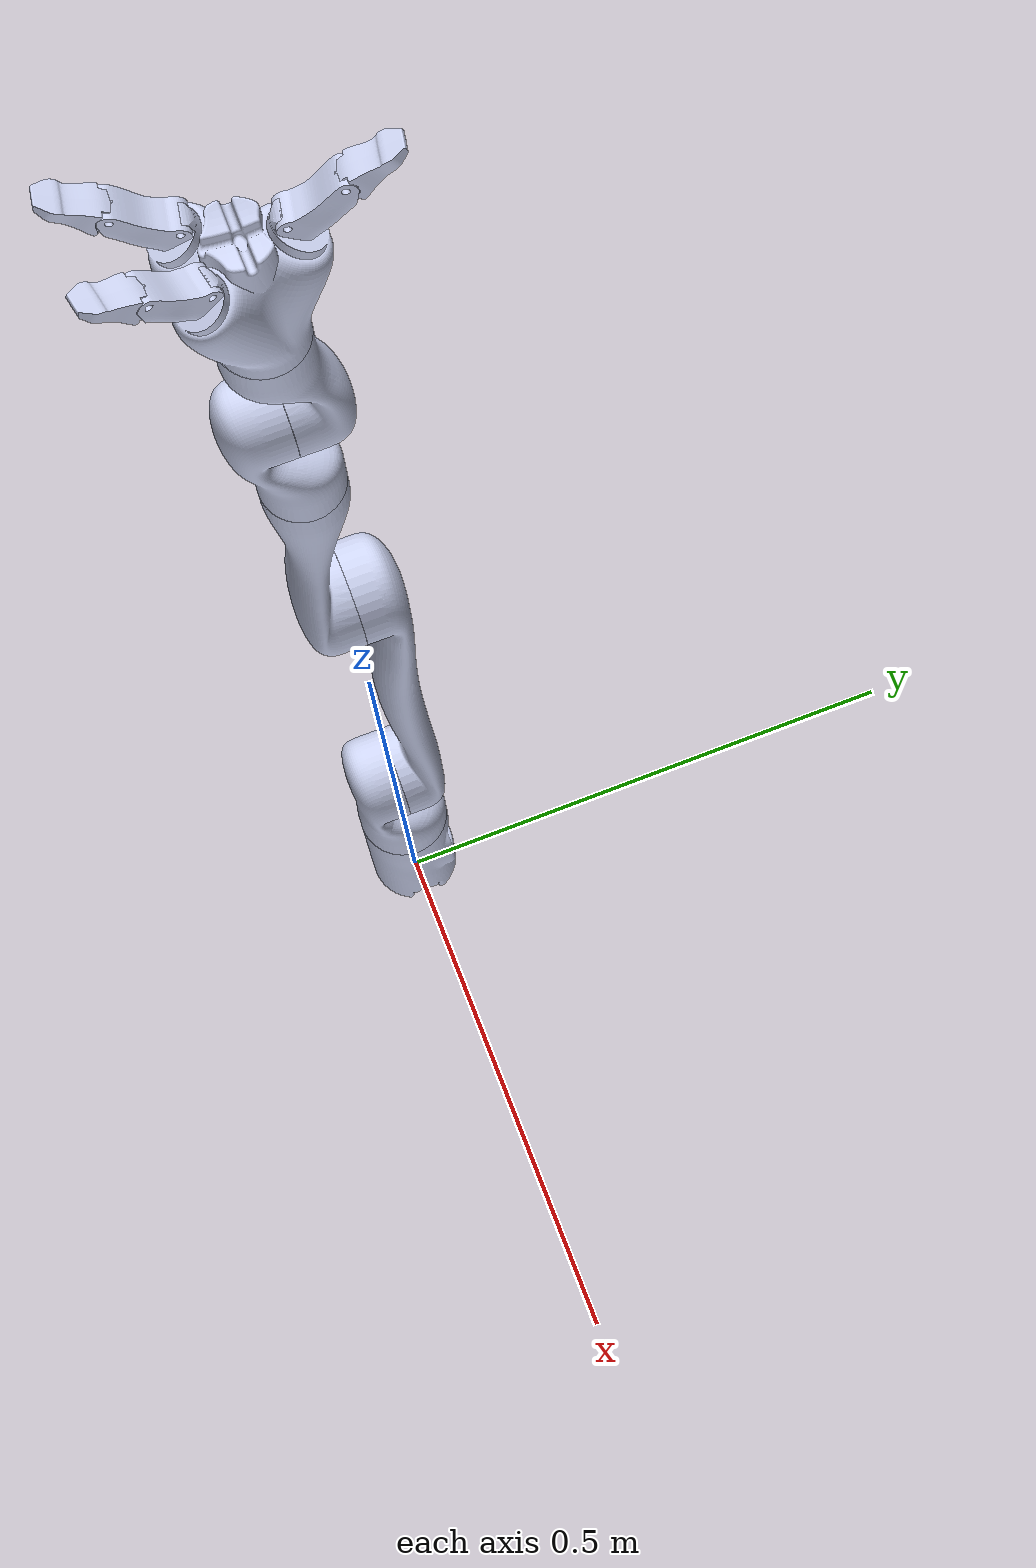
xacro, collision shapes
<?xml version="1.0"?>
<!-- j2s6_3 refers to jaco v2 6DOF spherical 3fingers -->

<robot xmlns:xi="http://www.w3.org/2001/XInclude"
    xmlns:gazebo="http://playerstage.sourceforge.net/gazebo/xmlschema/#gz"
    xmlns:model="http://playerstage.sourceforge.net/gazebo/xmlschema/#model"
    xmlns:sensor="http://playerstage.sourceforge.net/gazebo/xmlschema/#sensor"
    xmlns:body="http://playerstage.sourceforge.net/gazebo/xmlschema/#body"
    xmlns:geom="http://playerstage.sourceforge.net/gazebo/xmlschema/#geom"
    xmlns:joint="http://playerstage.sourceforge.net/gazebo/xmlschema/#joint"
    xmlns:controller="http://playerstage.sourceforge.net/gazebo/xmlschema/#controller"
    xmlns:interface="http://playerstage.sourceforge.net/gazebo/xmlschema/#interface"
    xmlns:rendering="http://playerstage.sourceforge.net/gazebo/xmlschema/#rendering"
    xmlns:renderable="http://playerstage.sourceforge.net/gazebo/xmlschema/#renderable"
    xmlns:physics="http://playerstage.sourceforge.net/gazebo/xmlschema/#physics"
    xmlns:xacro="http://www.ros.org/wiki/xacro" name="j2s6s300">

    <xacro:include filename="$(find kinova_description)/urdf/j2s6s300.xacro"/>

    <xacro:arg name="arm_root" default="base_link" />
    <xacro:property name="arm_root" value="$(arg arm_root)" />
    <link name="${arm_root}"/>
    <xacro:j2s6s300 base_parent="${arm_root}"/>
</robot>

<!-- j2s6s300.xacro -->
<!-- j2_6s refers to jaco v2 6DOF spherical -->

<robot xmlns:xi="http://www.w3.org/2001/XInclude"
    xmlns:gazebo="http://playerstage.sourceforge.net/gazebo/xmlschema/#gz"
    xmlns:model="http://playerstage.sourceforge.net/gazebo/xmlschema/#model"
    xmlns:sensor="http://playerstage.sourceforge.net/gazebo/xmlschema/#sensor"
    xmlns:body="http://playerstage.sourceforge.net/gazebo/xmlschema/#body"
    xmlns:geom="http://playerstage.sourceforge.net/gazebo/xmlschema/#geom"
    xmlns:joint="http://playerstage.sourceforge.net/gazebo/xmlschema/#joint"
    xmlns:controller="http://playerstage.sourceforge.net/gazebo/xmlschema/#controller"
    xmlns:interface="http://playerstage.sourceforge.net/gazebo/xmlschema/#interface"
    xmlns:rendering="http://playerstage.sourceforge.net/gazebo/xmlschema/#rendering"
    xmlns:renderable="http://playerstage.sourceforge.net/gazebo/xmlschema/#renderable"
    xmlns:physics="http://playerstage.sourceforge.net/gazebo/xmlschema/#physics"
    xmlns:xacro="http://www.ros.org/wiki/xacro">

    <xacro:include filename="$(find kinova_description)/urdf/kinova_common.xacro" />
    <xacro:include filename="$(find kinova_description)/urdf/kinova_finger_set.xacro" />

    <!-- Import all Gazebo-customization elements -->
    <xacro:include filename="$(find kinova_description)/urdf/kinova.gazebo" />

    <xacro:property name="link_base_mesh" value="base" />
    <xacro:property name="link_1_mesh" value="shoulder" />
    <xacro:property name="link_2_mesh" value="arm" />
    <xacro:property name="link_3_mesh" value="forearm" />
    <xacro:property name="link_4_mesh" value="wrist_spherical_1" />
    <xacro:property name="link_5_mesh" value="wrist_spherical_2" />
    <xacro:property name="link_6_mesh" value="hand_3finger" />

    <xacro:property name="link_base_mesh_no" value="0" />
    <xacro:property name="link_1_mesh_no" value="1" />
    <xacro:property name="link_2_mesh_no" value="2" />
    <xacro:property name="link_3_mesh_no" value="3" />
    <xacro:property name="link_4_mesh_no" value="8" />
    <xacro:property name="link_5_mesh_no" value="9" />
    <xacro:property name="link_6_mesh_no" value="55" />

    <xacro:property name="joint_base" value="joint_base" />
    <xacro:property name="joint_base_type" value="fixed" />
    <xacro:property name="joint_base_axis_xyz" value="0 0 0" />
    <xacro:property name="joint_base_origin_xyz" value="0 0 0" />
    <xacro:property name="joint_base_origin_rpy" value="0 0 0" />

    <xacro:property name="joint_1" value="joint_1" />
    <xacro:property name="joint_1_type" value="continuous" />
    <xacro:property name="joint_1_axis_xyz" value="0 0 1" />
    <xacro:property name="joint_1_origin_xyz" value="0 0 0.15675" />
    <xacro:property name="joint_1_origin_rpy" value="0 ${J_PI} 0" />
    <xacro:property name="joint_1_lower_limit" value="${-2*J_PI}" />
    <xacro:property name="joint_1_upper_limit" value="${2*J_PI}" />
    <xacro:property name="joint_1_velocity_limit" value="${36*J_PI/180}" />
    <xacro:property name="joint_1_torque_limit" value="1000" />

    <xacro:property name="joint_2" value="joint_2" />
    <xacro:property name="joint_2_type" value="revolute" />
    <xacro:property name="joint_2_axis_xyz" value="0 0 1" />
    <xacro:property name="joint_2_origin_xyz" value="0 0.0016 -0.11875" />
    <xacro:property name="joint_2_origin_rpy" value="${-J_PI/2} 0 ${J_PI}"/>
    <xacro:property name="joint_2_lower_limit" value="${47/180*J_PI}" />
    <xacro:property name="joint_2_upper_limit" value="${313/180*J_PI}" />
    <xacro:property name="joint_2_velocity_limit" value="${36*J_PI/180}" />
    <xacro:property name="joint_2_torque_limit" value="1000" />

    <xacro:property name="joint_3" value="joint_3" />
    <xacro:property name="joint_3_type" value="revolute" />
    <xacro:property name="joint_3_axis_xyz" value="0 0 1" />
    <xacro:property name="joint_3_origin_xyz" value="0 -0.410 0" />
    <xacro:property name="joint_3_origin_rpy" value="0 ${J_PI} 0" />
    <xacro:property name="joint_3_lower_limit" value="${19/180*J_PI}" />
    <xacro:property name="joint_3_upper_limit" value="${341/180*J_PI}" />
    <xacro:property name="joint_3_velocity_limit" value="${36*J_PI/180}" />
    <xacro:property name="joint_3_torque_limit" value="1000" />

    <xacro:property name="joint_4" value="joint_4" />
    <xacro:property name="joint_4_type" value="continuous" />
    <xacro:property name="joint_4_axis_xyz" value="0 0 1" />
    <xacro:property name="joint_4_origin_xyz" value="0 0.2073 -0.0114" />
    <xacro:property name="joint_4_origin_rpy" value="${-J_PI/2} 0 ${J_PI}" />
    <xacro:property name="joint_4_lower_limit" value="${-2*J_PI}" />
    <xacro:property name="joint_4_upper_limit" value="${2*J_PI}" />
    <xacro:property name="joint_4_velocity_limit" value="${48*J_PI/180}" />
    <xacro:property name="joint_4_torque_limit" value="1000" />

    <xacro:property name="joint_5" value="joint_5" />
    <xacro:property name="joint_5_type" value="revolute" />
    <xacro:property name="joint_5_axis_xyz" value="0 0 1" />
    <xacro:property name="joint_5_origin_xyz" value="0 0 -0.10375" />
    <xacro:property name="joint_5_origin_rpy" value="${J_PI/2} 0 ${J_PI}" />
    <xacro:property name="joint_5_lower_limit" value="${30/180*J_PI}" />
    <xacro:property name="joint_5_upper_limit" value="${330/180*J_PI}" />
    <xacro:property name="joint_5_velocity_limit" value="${48*J_PI/180}" />
    <xacro:property name="joint_5_torque_limit" value="1000" />

    <xacro:property name="joint_6" value="joint_6" />
    <xacro:property name="joint_6_type" value="continuous" />
    <xacro:property name="joint_6_axis_xyz" value="0 0 1" />
    <xacro:property name="joint_6_origin_xyz" value="0 0.10375 0" />
    <xacro:property name="joint_6_origin_rpy" value="${-J_PI/2} 0 ${J_PI}" />
    <xacro:property name="joint_6_lower_limit" value="${-2*J_PI}" />
    <xacro:property name="joint_6_upper_limit" value="${2*J_PI}" />
    <xacro:property name="joint_6_velocity_limit" value="${48*J_PI/180}" />
    <xacro:property name="joint_6_torque_limit" value="1000" />

    <xacro:property name="joint_end_effector" value="end_effector_offset" />
    <xacro:property name="joint_end_effector_type" value="fixed" />
    <xacro:property name="joint_end_effector_axis_xyz" value="0 0 0" />
    <xacro:property name="joint_end_effector_origin_xyz" value="0 0 -0.1600" />
    <xacro:property name="joint_end_effector_origin_rpy" value="${J_PI} 0 ${J_PI/2}" />

    <xacro:macro name="j2s6s300" params="base_parent prefix:=j2s6s300">

        <xacro:gazebo_config robot_namespace="${prefix}"/>

        <xacro:kinova_armlink link_name="${prefix}_link_base" link_mesh="${link_base_mesh}" mesh_no="${link_base_mesh_no}"/>
        <xacro:kinova_armjoint joint_name="${prefix}_joint_base" type="${joint_base_type}" parent="${base_parent}" child="${prefix}_link_base" joint_axis_xyz="${joint_base_axis_xyz}" joint_origin_xyz="${joint_base_origin_xyz}" joint_origin_rpy="${joint_base_origin_rpy}" joint_lower_limit="0" joint_upper_limit="0" joint_velocity_limit="0" joint_torque_limit="0" fixed="true"/>

        <xacro:kinova_armlink link_name="${prefix}_link_1" link_mesh="${link_1_mesh}" use_ring_mesh="true" mesh_no="${link_1_mesh_no}"/>
        <xacro:kinova_armjoint joint_name="${prefix}_joint_1" type="${joint_1_type}" parent="${prefix}_link_base" child="${prefix}_link_1" joint_axis_xyz="${joint_1_axis_xyz}" joint_origin_xyz="${joint_1_origin_xyz}" joint_origin_rpy="${joint_1_origin_rpy}" joint_lower_limit="${joint_1_lower_limit}" joint_upper_limit="${joint_1_upper_limit}" joint_velocity_limit="${joint_1_velocity_limit}" joint_torque_limit="${joint_1_torque_limit}"/>

        <xacro:kinova_armlink link_name="${prefix}_link_2" link_mesh="${link_2_mesh}" use_ring_mesh="true" mesh_no="${link_2_mesh_no}"/>
        <xacro:kinova_armjoint joint_name="${prefix}_joint_2" type="${joint_2_type}" parent="${prefix}_link_1" child="${prefix}_link_2" joint_axis_xyz="${joint_2_axis_xyz}" joint_origin_xyz="${joint_2_origin_xyz}" joint_origin_rpy="${joint_2_origin_rpy}" joint_lower_limit="${joint_2_lower_limit}" joint_upper_limit="${joint_2_upper_limit}" joint_velocity_limit="${joint_2_velocity_limit}" joint_torque_limit="${joint_2_torque_limit}"/>

        <xacro:kinova_armlink link_name="${prefix}_link_3" link_mesh="${link_3_mesh}" use_ring_mesh="true" mesh_no="${link_3_mesh_no}"/>
        <xacro:kinova_armjoint joint_name="${prefix}_joint_3" type="${joint_3_type}" parent="${prefix}_link_2" child="${prefix}_link_3" joint_axis_xyz="${joint_3_axis_xyz}" joint_origin_xyz="${joint_3_origin_xyz}" joint_origin_rpy="${joint_3_origin_rpy}" joint_lower_limit="${joint_3_lower_limit}" joint_upper_limit="${joint_3_upper_limit}" joint_velocity_limit="${joint_3_velocity_limit}" joint_torque_limit="${joint_3_torque_limit}"/>

        <xacro:kinova_armlink link_name="${prefix}_link_4" link_mesh="${link_4_mesh}" use_ring_mesh="true" ring_mesh="ring_small" mesh_no="${link_4_mesh_no}"/>
        <xacro:kinova_armjoint joint_name="${prefix}_joint_4" type="${joint_4_type}" parent="${prefix}_link_3" child="${prefix}_link_4" joint_axis_xyz="${joint_4_axis_xyz}" joint_origin_xyz="${joint_4_origin_xyz}" joint_origin_rpy="${joint_4_origin_rpy}" joint_lower_limit="${joint_4_lower_limit}" joint_upper_limit="${joint_4_upper_limit}" joint_velocity_limit="${joint_4_velocity_limit}" joint_torque_limit="${joint_4_torque_limit}"/>

        <xacro:kinova_armlink link_name="${prefix}_link_5" link_mesh="${link_5_mesh}" use_ring_mesh="true" ring_mesh="ring_small" mesh_no="${link_5_mesh_no}"/>
        <xacro:kinova_armjoint joint_name="${prefix}_joint_5" type="${joint_5_type}" parent="${prefix}_link_4" child="${prefix}_link_5" joint_axis_xyz="${joint_5_axis_xyz}" joint_origin_xyz="${joint_5_origin_xyz}" joint_origin_rpy="${joint_5_origin_rpy}" joint_lower_limit="${joint_5_lower_limit}" joint_upper_limit="${joint_5_upper_limit}" joint_velocity_limit="${joint_5_velocity_limit}" joint_torque_limit="${joint_5_torque_limit}"/>

        <xacro:kinova_armlink link_name="${prefix}_link_6" link_mesh="${link_6_mesh}" use_ring_mesh="true" ring_mesh="ring_small" mesh_no="${link_6_mesh_no}"/>
        <xacro:kinova_armjoint joint_name="${prefix}_joint_6" type="${joint_6_type}" parent="${prefix}_link_5" child="${prefix}_link_6" joint_axis_xyz="${joint_6_axis_xyz}" joint_origin_xyz="${joint_6_origin_xyz}" joint_origin_rpy="${joint_6_origin_rpy}" joint_lower_limit="${joint_6_lower_limit}" joint_upper_limit="${joint_6_upper_limit}" joint_velocity_limit="${joint_6_velocity_limit}" joint_torque_limit="${joint_6_torque_limit}"/>

        <xacro:kinova_virtual_link link_name="${prefix}_end_effector"/>
        <xacro:kinova_virtual_joint joint_name="${prefix}_joint_end_effector" type="${joint_end_effector_type}" parent="${prefix}_link_6" child="${prefix}_end_effector" joint_axis_xyz="${joint_end_effector_axis_xyz}" joint_origin_xyz="${joint_end_effector_origin_xyz}" joint_origin_rpy="${joint_end_effector_origin_rpy}" joint_lower_limit="0" joint_upper_limit="0"/>

    <xacro:kinova_3fingers link_hand="${prefix}_link_6" prefix="${prefix}_"/>

    </xacro:macro>

</robot>

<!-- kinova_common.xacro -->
<root xmlns:xi="http://www.w3.org/2001/XInclude"
	xmlns:gazebo="http://playerstage.sourceforge.net/gazebo/xmlschema/#gz"
    xmlns:model="http://playerstage.sourceforge.net/gazebo/xmlschema/#model"
	xmlns:sensor="http://playerstage.sourceforge.net/gazebo/xmlschema/#sensor"
	xmlns:body="http://playerstage.sourceforge.net/gazebo/xmlschema/#body"
    xmlns:geom="http://playerstage.sourceforge.net/gazebo/xmlschema/#geom"
    xmlns:joint="http://playerstage.sourceforge.net/gazebo/xmlschema/#joint"
	xmlns:controller="http://playerstage.sourceforge.net/gazebo/xmlschema/#controller"
	xmlns:interface="http://playerstage.sourceforge.net/gazebo/xmlschema/#interface"
	xmlns:rendering="http://playerstage.sourceforge.net/gazebo/xmlschema/#rendering"
    xmlns:renderable="http://playerstage.sourceforge.net/gazebo/xmlschema/#renderable"
    xmlns:physics="http://playerstage.sourceforge.net/gazebo/xmlschema/#physics"
	xmlns:xacro="http://www.ros.org/wiki/xacro">

<xacro:include filename="$(find kinova_description)/urdf/kinova_inertial.xacro" />

    <xacro:property name="J_PI" value="3.1415926535897931" />

    <xacro:macro name="kinova_armlink" params="link_name link_mesh ring_mesh:=ring_big use_ring_mesh:=false mesh_no">
        <link name="${link_name}">
            <visual>
                <geometry>
                    <mesh
                        filename="package://kinova_description/meshes/${link_mesh}.dae"/>
                </geometry>
                <material name="carbon_fiber">
                    <color rgba="0.792156862745098 0.819607843137255 0.933333333333333 1" />
                </material>
            </visual>

	    <!-- Adding ring to the model -->
	         <xacro:if value="${use_ring_mesh}">
	           <visual>
                <geometry>
                    <mesh
                        filename="package://kinova_description/meshes/${ring_mesh}.dae"/>
                </geometry>
             </visual>
	    </xacro:if>

            <collision>
                <geometry>
                    <mesh
                        filename="package://kinova_description/meshes/${link_mesh}.dae"/>
                </geometry>
            </collision>
						<xacro:kinova_inertial mesh_no="${mesh_no}"/>
      </link>

    </xacro:macro>

  <xacro:property name="dummy_default_value" value="1234567890"/>
  <xacro:macro name="kinova_armjoint" params="joint_name
                                              type
                                              parent
                                              child
                                              joint_axis_xyz
                                              joint_origin_xyz
                                              joint_origin_rpy
                                              joint_lower_limit:=${dummy_default_value}
                                              joint_upper_limit:=${dummy_default_value}
                                              joint_velocity_limit:=${dummy_default_value}
                                              joint_torque_limit:=${dummy_default_value}
                                              fixed:=false">
    <xacro:if value="${(type == 'fixed' and not fixed) or (type != 'fixed' and fixed)}"><xacro:ERROR_inconsistent_joint_type_specification/></xacro:if>
    <xacro:if value="${type == 'revolute'}">
      <xacro:if value="${joint_lower_limit == dummy_default_value}"><xacro:ERROR_joint_lower_limit_needs_to_be_set_for_a_revolute_joint/></xacro:if>
      <xacro:if value="${joint_upper_limit == dummy_default_value}"><xacro:ERROR_joint_upper_limit_needs_to_be_set_for_a_revolute_joint/></xacro:if>
    </xacro:if>
    <xacro:unless value="${type =='fixed'}">
      <xacro:if value="${joint_velocity_limit == dummy_default_value}"><xacro:ERROR_joint_velocity_limit_needs_to_be_set_for_a_non_fixed_joint/></xacro:if>
      <xacro:if value="${joint_torque_limit == dummy_default_value}"><xacro:ERROR_joint_torque_limit_needs_to_be_set_for_a_non_fixed_joint/></xacro:if>
    </xacro:unless>
    <joint name="${joint_name}" type="${type}">
        <parent link="${parent}"/>
        <child link="${child}"/>
        <axis xyz="${joint_axis_xyz}"/>
        <xacro:if value="${type == 'revolute'}">
        <limit effort="${joint_torque_limit}" velocity="${joint_velocity_limit}" lower="${joint_lower_limit}" upper="${joint_upper_limit}"/>
        </xacro:if>
        <xacro:if value="${type == 'continuous'}">
        <limit effort="${joint_torque_limit}" velocity="${joint_velocity_limit}"/>
        </xacro:if>
        <origin xyz="${joint_origin_xyz}" rpy="${joint_origin_rpy}"/>
        <dynamics damping="0.0" friction="0.0"/>
     </joint>
   <xacro:unless value="${fixed}">
     <transmission name="${joint_name}_trans">
        <type>transmission_interface/SimpleTransmission</type>
        <joint name="${joint_name}">
          <hardwareInterface>hardware_interface/EffortJointInterface</hardwareInterface>
        </joint>
        <actuator name="${joint_name}_actuator">
          <hardwareInterface>hardware_interface/EffortJointInterface</hardwareInterface>
        <mechanicalReduction>160</mechanicalReduction>
        </actuator>
     </transmission>
     <!--For torque sensing in simulation-->
     <gazebo reference="${joint_name}">
        <provideFeedback>true</provideFeedback>
      </gazebo>
      <gazebo>
        <plugin name="ft_sensor" filename="libgazebo_ros_ft_sensor.so">
          <updateRate>30.0</updateRate>
          <topicName>${joint_name}_ft_sensor_topic</topicName>
          <jointName>${joint_name}</jointName>
        </plugin>
      </gazebo>
     </xacro:unless>
  </xacro:macro>

    <xacro:macro name="kinova_virtual_link" params="link_name">
        <link name="${link_name}"/>
    </xacro:macro>

    <xacro:macro name="kinova_virtual_joint" params="joint_name type parent child joint_axis_xyz joint_origin_xyz joint_origin_rpy joint_lower_limit joint_upper_limit">
    <joint name="${joint_name}" type="${type}">
        <parent link="${parent}"/>
        <child link="${child}"/>
        <axis xyz="${joint_axis_xyz}"/>
        <xacro:unless value="${type == 'fixed'}">
        <limit effort="2000" velocity="1" lower="${joint_lower_limit}" upper="${joint_upper_limit}"/>
        </xacro:unless>
        <origin xyz="${joint_origin_xyz}" rpy="${joint_origin_rpy}"/>
     </joint>
    </xacro:macro>

    <xacro:macro name="kinova_finger" params="prefix finger_number hand finger_origin_xyz finger_origin_rpy">

        <xacro:kinova_armlink link_name="${prefix}link_finger_${finger_number}" link_mesh="finger_proximal" mesh_no="57"/>

        <joint name="${prefix}joint_finger_${finger_number}" type="revolute">
            <parent link="${hand}"/>
            <child link="${prefix}link_finger_${finger_number}"/>
            <axis xyz="0 0 1"/>
            <origin xyz="${finger_origin_xyz}" rpy="${finger_origin_rpy}"/>
            <limit lower="0" upper="1.51" effort="2" velocity="1"/>
        </joint>
		    <transmission name="${prefix}joint_finger_${finger_number}_trans">
					<type>transmission_interface/SimpleTransmission</type>
					<joint name="${prefix}joint_finger_${finger_number}">
					  <hardwareInterface>hardware_interface/EffortJointInterface</hardwareInterface>
					</joint>
					<actuator name="${prefix}joint_finger_${finger_number}_actuator">
					<hardwareInterface>hardware_interface/EffortJointInterface</hardwareInterface>
					<mechanicalReduction>1</mechanicalReduction>
					</actuator>
		    </transmission>

        <xacro:kinova_armlink link_name="${prefix}link_finger_tip_${finger_number}" link_mesh="finger_distal" mesh_no="58"/>

        <joint name="${prefix}joint_finger_tip_${finger_number}" type="revolute">
            <parent link="${prefix}link_finger_${finger_number}"/>
            <child link="${prefix}link_finger_tip_${finger_number}"/>
            <axis xyz="0 0 1"/>
            <origin xyz="0.044 -0.003 0" rpy="0 0 0"/>
            <limit lower="0" upper="2" effort="2" velocity="1"/>
        </joint>
        <transmission name="${prefix}joint_finger_tip_${finger_number}_trans">
					<type>transmission_interface/SimpleTransmission</type>
					<joint name="${prefix}joint_finger_tip_${finger_number}">
					  <hardwareInterface>hardware_interface/EffortJointInterface</hardwareInterface>
					</joint>
					<actuator name="${prefix}joint_finger_tip_${finger_number}_actuator">
					<hardwareInterface>hardware_interface/EffortJointInterface</hardwareInterface>
					<mechanicalReduction>1</mechanicalReduction>
					</actuator>
        </transmission>

    </xacro:macro>

</root>
